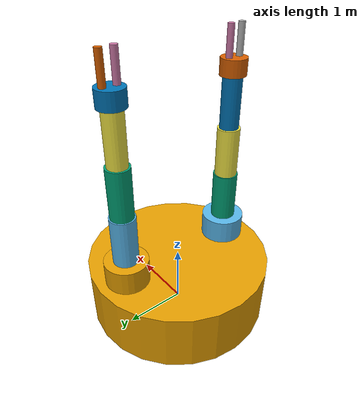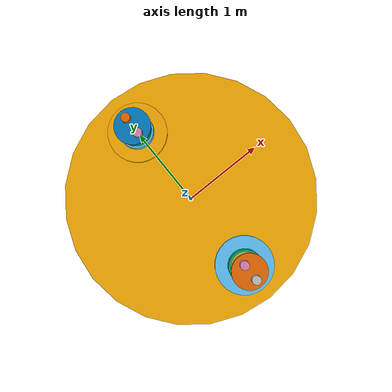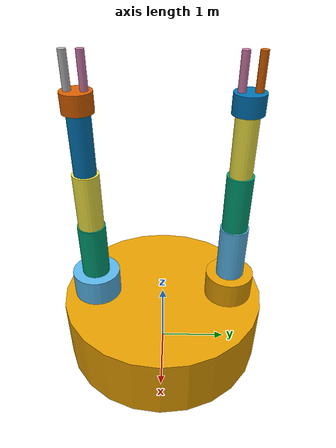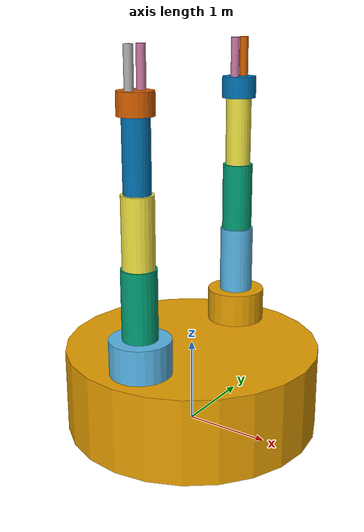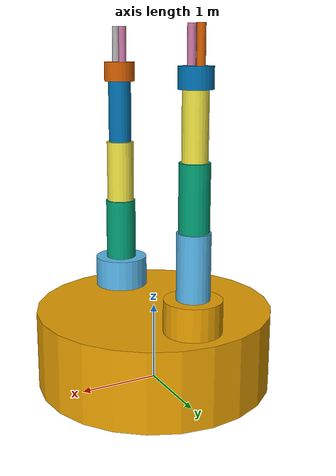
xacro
<?xml version="1.0" ?>

<robot name="mrm" xmlns:xacro="http://www.ros.org/wiki/xacro">

   <!-- BGN - Include -->
   <xacro:include filename="$(find mrm_description)/urdf/robot_parameters.xacro" />
   <xacro:include filename="$(find mrm_description)/urdf/links_joints.xacro" />
   <!-- END - Include -->

    <!-- BGN - Robot description -->
    <m_link_cylinder name="${link_00_name}"
            origin_rpy="0 0 0" origin_xyz="0 0 0.5"
            mass="3000"
            ixx="1562" ixy="0" ixz="0"
            iyy="1562" iyz="0"
            izz="1224.5"
            radius="1.5" length="1" />

    <m_joint name="${link_00_name}__${link_01_name}" type="revolute"
            axis_xyz="0 0 1"
            origin_rpy="0 0 0" origin_xyz="0 -1 1"
            parent="base_link" child="link_01"
            limit_e="1000" limit_l="-3.14" limit_u="0" limit_v="0.5" />

    <m_link_cylinder name="${link_01_name}"
            origin_rpy="0 0 0" origin_xyz="0 0 0.2"
            mass="157.633"
            ixx="13.235" ixy="0" ixz="0"
            iyy="13.235" iyz="0"
            izz="9.655"
            length="0.4" radius="0.35" />

   <m_joint name="${link_01_name}__${link_02_name}" type="revolute"
            axis_xyz="0 1 0"
            origin_rpy="0 0 0" origin_xyz="0 0 0.4"
            parent="link_01" child="link_02"
            limit_e="1000" limit_l="0" limit_u="0.5" limit_v="0.5" />

    <m_link_cylinder name="${link_02_name}"
            origin_rpy="0 0 0" origin_xyz="0 0 0.4"
            mass="57.906"
            ixx="12.679" ixy="0" ixz="0"
            iyy="12.679" iyz="0"
            izz="0.651"
            radius="0.2" length="0.8"/>

   <m_joint name="${link_02_name}__${link_03_name}" type="revolute"
            axis_xyz="0 1 0"
            origin_rpy="0 0 0" origin_xyz="0 0 0.8"
            parent="link_02" child="link_03"
            limit_e="1000" limit_l="0" limit_u="0.75" limit_v="0.5" />

    <m_link_cylinder name="${link_03_name}"
            origin_rpy="0 0 0" origin_xyz="0 0 0.4"
            mass="57.906"
            ixx="12.679" ixy="0" ixz="0"
            iyy="12.679" iyz="0"
            izz="0.651"
            radius="0.18" length="0.8" />

   <m_joint name="${link_03_name}__${link_04_name}" type="revolute"
            axis_xyz="0 1 0"
            origin_rpy="0 0 0" origin_xyz="0 0 0.8"
            parent="link_03" child="link_04"
            limit_e="1000" limit_l="0" limit_u="0.75" limit_v="0.5" />

    <m_link_cylinder name="${link_04_name}"
            origin_rpy="0 0 0" origin_xyz="0 0 0.4"
            mass="57.906"
            ixx="12.679" ixy="0" ixz="0"
            iyy="12.679" iyz="0"
            izz="0.651"
            radius="0.15" length="0.8" />

   <m_joint name="${link_04_name}__${link_05_name}" type="revolute"
            axis_xyz="0 0 1"
            origin_rpy="0 0 0" origin_xyz="0 0 0.8"
            parent="link_04" child="link_05"
            limit_e="1000" limit_l="-3.14" limit_u="3.14" limit_v="0.5" />

    <m_link_cylinder name="${link_05_name}"
            origin_rpy="0 0 0" origin_xyz="0 0 0.125"
            mass="18.056"
            ixx="0.479" ixy="0" ixz="0"
            iyy="0.479" iyz="0"
            izz="0.204"
            radius="0.2" length="0.25" />

<m_joint name="${link_05_name}__${link_06_name}" type="revolute"
            axis_xyz="1 0 0"
            origin_rpy="0 0 0" origin_xyz="0 0.1 0.35"
            parent="link_05" child="link_06"
            limit_e="1000" limit_l="-0.1" limit_u="0.4" limit_v="0.5" />

    <m_link_cylinder name="${link_06_name}"
            origin_rpy="0 0 0" origin_xyz="0 0 0.125"
            mass="9.056"
            ixx="0.279" ixy="0" ixz="0"
            iyy="0.279" iyz="0"
            izz="0.104"
            radius="0.05" length="0.45" />

   <m_joint name="${link_05_name}__${link_07_name}" type="revolute"
            axis_xyz="1 0 0"
            origin_rpy="0 0 0" origin_xyz="0 -0.1 0.35"
            parent="link_05" child="link_07"
            limit_e="1000" limit_l="-0.1" limit_u="0.4" limit_v="0.5" />

    <m_link_cylinder name="${link_07_name}"
            origin_rpy="0 0 0" origin_xyz="0 0 0.125"
            mass="9.056"
            ixx="0.279" ixy="0" ixz="0"
            iyy="0.279" iyz="0"
            izz="0.104"
            radius="0.05" length="0.45" /> -->

    <m_joint name="${link_00_name}__${link_11_name}" type="revolute"
            axis_xyz="0 0 1"
            origin_rpy="0 0 0" origin_xyz="0 1 1"
            parent="base_link" child="link_11"
            limit_e="1000" limit_l="0" limit_u="3.14" limit_v="0.5" />

    <m_link_cylinder name="${link_11_name}"
            origin_rpy="0 0 0" origin_xyz="0 0 0.2"
            mass="157.633"
            ixx="13.235" ixy="0" ixz="0"
            iyy="13.235" iyz="0"
            izz="9.655"
            length="0.4" radius="0.35" />

   <m_joint name="${link_11_name}__${link_12_name}" type="revolute"
            axis_xyz="0 1 0"
            origin_rpy="0 0 0" origin_xyz="0 0 0.4"
            parent="link_11" child="link_12"
            limit_e="1000" limit_l="0" limit_u="0.5" limit_v="0.5" />

    <m_link_cylinder name="${link_12_name}"
            origin_rpy="0 0 0" origin_xyz="0 0 0.4"
            mass="57.906"
            ixx="12.679" ixy="0" ixz="0"
            iyy="12.679" iyz="0"
            izz="0.651"
            radius="0.2" length="0.8" />

   <m_joint name="${link_12_name}__${link_13_name}" type="revolute"
            axis_xyz="0 1 0"
            origin_rpy="0 0 0" origin_xyz="0 0 0.8"
            parent="link_12" child="link_13"
            limit_e="1000" limit_l="0" limit_u="0.75" limit_v="0.5" />

    <m_link_cylinder name="${link_13_name}"
            origin_rpy="0 0 0" origin_xyz="0 0 0.4"
            mass="57.906"
            ixx="12.679" ixy="0" ixz="0"
            iyy="12.679" iyz="0"
            izz="0.651"
            radius="0.18" length="0.8" />

   <m_joint name="${link_13_name}__${link_14_name}" type="revolute"
            axis_xyz="0 1 0"
            origin_rpy="0 0 0" origin_xyz="0 0 0.8"
            parent="link_13" child="link_14"
            limit_e="1000" limit_l="0" limit_u="0.75" limit_v="0.5" />

    <m_link_cylinder name="${link_14_name}"
            origin_rpy="0 0 0" origin_xyz="0 0 0.4"
            mass="57.906"
            ixx="12.679" ixy="0" ixz="0"
            iyy="12.679" iyz="0"
            izz="0.651"
            radius="0.15" length="0.8" />

   <m_joint name="${link_14_name}__${link_15_name}" type="revolute"
            axis_xyz="0 0 1"
            origin_rpy="0 0 0" origin_xyz="0 0 0.8"
            parent="link_14" child="link_15"
            limit_e="1000" limit_l="-3.14" limit_u="3.14" limit_v="0.5" />

    <m_link_cylinder name="${link_15_name}"
            origin_rpy="0 0 0" origin_xyz="0 0 0.125"
            mass="18.056"
            ixx="0.479" ixy="0" ixz="0"
            iyy="0.479" iyz="0"
            izz="0.204"
            radius="0.20" length="0.25" />

<m_joint name="${link_15_name}__${link_16_name}" type="revolute"
            axis_xyz="1 0 0"
            origin_rpy="0 0 0" origin_xyz="0 0.1 0.35"
            parent="link_15" child="link_16"
            limit_e="1000" limit_l="-0.1" limit_u="0.4" limit_v="0.5" />

    <m_link_cylinder name="${link_16_name}"
            origin_rpy="0 0 0" origin_xyz="0 0 0.125"
            mass="9.056"
            ixx="0.279" ixy="0" ixz="0"
            iyy="0.279" iyz="0"
            izz="0.104"
            radius="0.05" length="0.45" />

   <m_joint name="${link_15_name}__${link_17_name}" type="revolute"
            axis_xyz="1 0 0"
            origin_rpy="0 0 0" origin_xyz="0 -0.1 0.35"
            parent="link_15" child="link_17"
            limit_e="1000" limit_l="-0.1" limit_u="0.4" limit_v="0.5" />

    <m_link_cylinder name="${link_17_name}"
            origin_rpy="0 0 0" origin_xyz="0 0 0.125"
            mass="9.056"
            ixx="0.279" ixy="0" ixz="0"
            iyy="0.279" iyz="0"
            izz="0.104"
            radius="0.05" length="0.45" />
    <!-- END - Robot description -->

-->

<gazebo>
    <plugin name="gazebo_ros_control" filename="libgazebo_ros_control.so">
    </plugin>
</gazebo>

</robot>

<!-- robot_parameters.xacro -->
<robot xmlns:xacro="http://www.ros.org/wiki/xacro">
  <xacro:property name="link_00_name" value="base_link" />
  <xacro:property name="link_01_name" value="link_01" />
  <xacro:property name="link_02_name" value="link_02" />
  <xacro:property name="link_03_name" value="link_03" />
  <xacro:property name="link_04_name" value="link_04" />
  <xacro:property name="link_05_name" value="link_05" />
  <xacro:property name="link_06_name" value="link_06" />
  <xacro:property name="link_07_name" value="link_07" />
  <xacro:property name="link_11_name" value="link_11" />
  <xacro:property name="link_12_name" value="link_12" />
  <xacro:property name="link_13_name" value="link_13" />
  <xacro:property name="link_14_name" value="link_14" />
  <xacro:property name="link_15_name" value="link_15" />
  <xacro:property name="link_16_name" value="link_16" />
  <xacro:property name="link_17_name" value="link_17" />
</robot>

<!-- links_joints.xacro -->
<robot xmlns:xacro="http://www.ros.org/wiki/xacro">

   <xacro:macro name="m_joint" params="name type axis_xyz origin_rpy origin_xyz parent child limit_e limit_l limit_u limit_v">
     <joint name="${name}" type="${type}">
       <axis xyz="${axis_xyz}" />
       <limit effort="${limit_e}" lower="${limit_l}" upper="${limit_u}" velocity="${limit_v}" />
        <origin rpy="${origin_rpy}" xyz="${origin_xyz}" />
       <parent link="${parent}" />
       <child link="${child}" />
     </joint>
     <transmission name="trans_${name}">
      <type>transmission_interface/SimpleTransmission</type>
       <joint name="${name}">
         <hardwareInterface>hardware_interface/EffortJointInterface</hardwareInterface>
       </joint>
       <actuator name="motor_${name}">
        <hardwareInterface>hardware_interface/EffortJointInterface</hardwareInterface>
        <mechanicalReduction>1</mechanicalReduction>
       </actuator>
     </transmission>
  </xacro:macro>

   <xacro:macro name="m_link_cylinder" params="name origin_xyz origin_rpy radius length mass ixx ixy ixz iyy iyz izz">
     <link name="${name}">
       <inertial>
         <mass value="${mass}" />
         <origin rpy="${origin_rpy}" xyz="${origin_xyz}" />
         <inertia ixx="${ixx}" ixy="${ixy}" ixz="${ixz}" iyy="${iyy}" iyz="${iyz}" izz="${izz}" />
       </inertial>
       <collision>
         <origin rpy="${origin_rpy}" xyz="${origin_xyz}" />
         <geometry>
           <cylinder radius="${radius}" length="${length}" />
         </geometry>
       </collision>
       <visual>
         <origin rpy="${origin_rpy}" xyz="${origin_xyz}" />
         <geometry>
           <cylinder radius="${radius}" length="${length}" />
         </geometry>
       </visual>
     </link>
   </xacro:macro>

   <xacro:macro name="m_link_box" params="name origin_xyz origin_rpy size mass ixx ixy ixz iyy iyz izz">
     <link name="${name}">
     <inertial>
         <mass value="${mass}" />
         <origin rpy="${origin_rpy}" xyz="${origin_xyz}" />
         <inertia ixx="${ixx}" ixy="${ixy}" ixz="${ixz}" iyy="${iyy}" iyz="${iyz}" izz="${izz}" />
       </inertial>
       <collision>
         <origin rpy="${origin_rpy}" xyz="${origin_xyz}" />
         <geometry>
           <box size="${size}" />
         </geometry>
       </collision>
       <visual>
         <origin rpy="${origin_rpy}" xyz="${origin_xyz}" />
         <geometry>
           <box size="${size}" />
         </geometry>
       </visual>
     </link>
   </xacro:macro>

 </robot>
